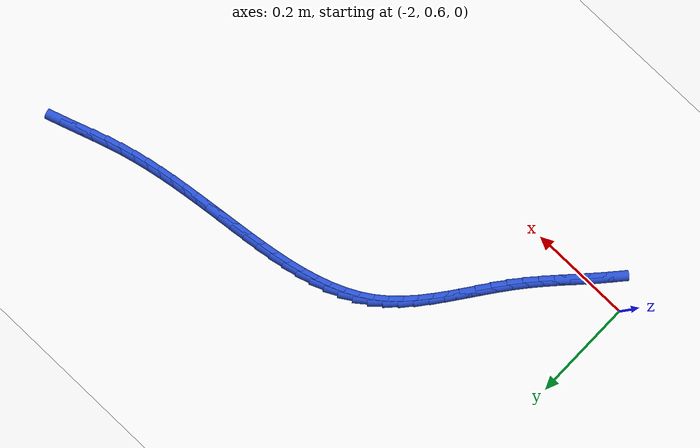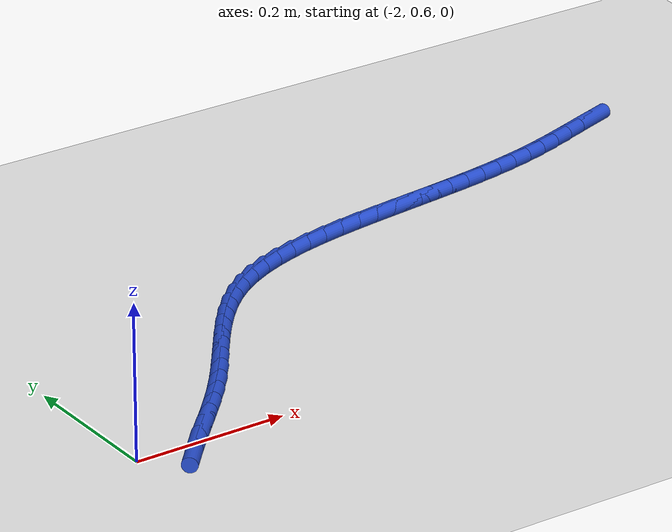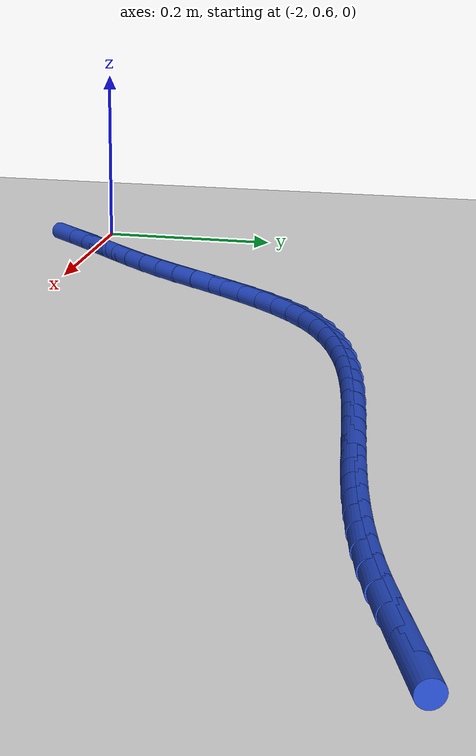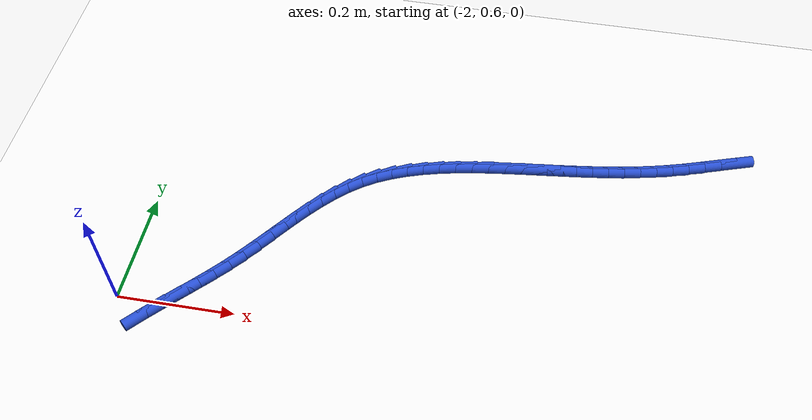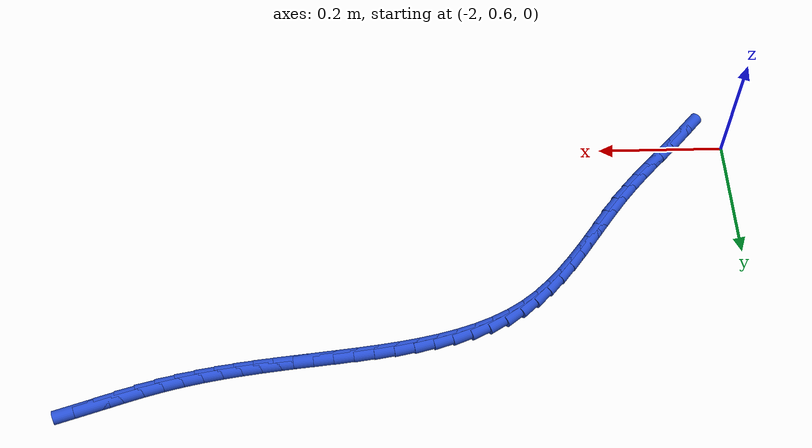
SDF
<sdf version="1.6">
 <world name="default">
  <model name="ground_plane">
   <static>1</static>
   <link name="link">
    <collision name="collision">
     <geometry><plane><normal>0 0 1</normal><size>100 100</size></plane></geometry>
     <surface><friction><ode><mu>100</mu><mu2>50</mu2></ode></friction></surface>
    </collision>
    <visual name="visual">
     <cast_shadows>0</cast_shadows>
     <geometry><plane><normal>0 0 1</normal><size>100 100</size></plane></geometry>
     <material>
      <script><uri>file://media/materials/scripts/gazebo.material</uri><name>Gazebo/WhiteGlow</name></script>
     </material>
    </visual>
   </link>
  </model>
  <model name="line">
   <link name="link_57">
    <pose>-1.0180384416801902 1.0537966444905325 0.01 0 1.57 0.3209126686316605</pose>
    <collision name="collision">
     <geometry><cylinder><radius>0.01</radius><length>0.08</length></cylinder></geometry>
    </collision>
    <visual name="visual">
     <material>
      <script><name>Gazebo/Blue</name><uri>file://media/materials/scripts/gazebo.material</uri></script>
     </material>
     <geometry><cylinder><radius>0.01</radius><length>0.08</length></cylinder></geometry>
    </visual>
   </link>
   <link name="link_58">
    <pose>-1.0463140936176338 1.0443977440187677 0.01 0 1.57 0.3240543120813352</pose>
    <collision name="collision">
     <geometry><cylinder><radius>0.01</radius><length>0.08</length></cylinder></geometry>
    </collision>
    <visual name="visual">
     <material>
      <script><name>Gazebo/Blue</name><uri>file://media/materials/scripts/gazebo.material</uri></script>
     </material>
     <geometry><cylinder><radius>0.01</radius><length>0.08</length></cylinder></geometry>
    </visual>
   </link>
   <link name="link_59">
    <pose>-1.0746094828220407 1.0348934632487918 0.01 0 1.57 0.31195559259773376</pose>
    <collision name="collision">
     <geometry><cylinder><radius>0.01</radius><length>0.08</length></cylinder></geometry>
    </collision>
    <visual name="visual">
     <material>
      <script><name>Gazebo/Blue</name><uri>file://media/materials/scripts/gazebo.material</uri></script>
     </material>
     <geometry><cylinder><radius>0.01</radius><length>0.08</length></cylinder></geometry>
    </visual>
   </link>
   <link name="link_60">
    <pose>-1.1028544534829592 1.025784880642453 0.01 0 1.57 0.2842858949782381</pose>
    <collision name="collision">
     <geometry><cylinder><radius>0.01</radius><length>0.08</length></cylinder></geometry>
    </collision>
    <visual name="visual">
     <material>
      <script><name>Gazebo/Blue</name><uri>file://media/materials/scripts/gazebo.material</uri></script>
     </material>
     <geometry><cylinder><radius>0.01</radius><length>0.08</length></cylinder></geometry>
    </visual>
   </link>
   <link name="link_61">
    <pose>-1.1309800457159738 1.0175665723268508 0.01 0 1.57 0.24844615764061057</pose>
    <collision name="collision">
     <geometry><cylinder><radius>0.01</radius><length>0.08</length></cylinder></geometry>
    </collision>
    <visual name="visual">
     <material>
      <script><name>Gazebo/Blue</name><uri>file://media/materials/scripts/gazebo.material</uri></script>
     </material>
     <geometry><cylinder><radius>0.01</radius><length>0.08</length></cylinder></geometry>
    </visual>
   </link>
   <link name="link_62">
    <pose>-1.1589662777002083 1.0104668172208588 0.01 0 1.57 0.2155462210586795</pose>
    <collision name="collision">
     <geometry><cylinder><radius>0.01</radius><length>0.08</length></cylinder></geometry>
    </collision>
    <visual name="visual">
     <material>
      <script><name>Gazebo/Blue</name><uri>file://media/materials/scripts/gazebo.material</uri></script>
     </material>
     <geometry><cylinder><radius>0.01</radius><length>0.08</length></cylinder></geometry>
    </visual>
   </link>
   <link name="link_63">
    <pose>-1.1868582688744531 1.0043599340732465 0.01 0 1.57 0.1868319856758696</pose>
    <collision name="collision">
     <geometry><cylinder><radius>0.01</radius><length>0.08</length></cylinder></geometry>
    </collision>
    <visual name="visual">
     <material>
      <script><name>Gazebo/Blue</name><uri>file://media/materials/scripts/gazebo.material</uri></script>
     </material>
     <geometry><cylinder><radius>0.01</radius><length>0.08</length></cylinder></geometry>
    </visual>
   </link>
   <link name="link_64">
    <pose>-1.214705641324465 0.9990957604216043 0.01 0 1.57 0.1626871165350177</pose>
    <collision name="collision">
     <geometry><cylinder><radius>0.01</radius><length>0.08</length></cylinder></geometry>
    </collision>
    <visual name="visual">
     <material>
      <script><name>Gazebo/Blue</name><uri>file://media/materials/scripts/gazebo.material</uri></script>
     </material>
     <geometry><cylinder><radius>0.01</radius><length>0.08</length></cylinder></geometry>
    </visual>
   </link>
   <link name="link_65">
    <pose>-1.242558017136001 0.9945241338035207 0.01 0 1.57 0.14339016053336223</pose>
    <collision name="collision">
     <geometry><cylinder><radius>0.01</radius><length>0.08</length></cylinder></geometry>
    </collision>
    <visual name="visual">
     <material>
      <script><name>Gazebo/Blue</name><uri>file://media/materials/scripts/gazebo.material</uri></script>
     </material>
     <geometry><cylinder><radius>0.01</radius><length>0.08</length></cylinder></geometry>
    </visual>
   </link>
   <link name="link_66">
    <pose>-1.270465018394818 0.990494891756585 0.01 0 1.57 0.1291190429775601</pose>
    <collision name="collision">
     <geometry><cylinder><radius>0.01</radius><length>0.08</length></cylinder></geometry>
    </collision>
    <visual name="visual">
     <material>
      <script><name>Gazebo/Blue</name><uri>file://media/materials/scripts/gazebo.material</uri></script>
     </material>
     <geometry><cylinder><radius>0.01</radius><length>0.08</length></cylinder></geometry>
    </visual>
   </link>
   <link name="link_67">
    <pose>-1.2984762671866734 0.9868578718183878 0.01 0 1.57 0.1199590187277706</pose>
    <collision name="collision">
     <geometry><cylinder><radius>0.01</radius><length>0.08</length></cylinder></geometry>
    </collision>
    <visual name="visual">
     <material>
      <script><name>Gazebo/Blue</name><uri>file://media/materials/scripts/gazebo.material</uri></script>
     </material>
     <geometry><cylinder><radius>0.01</radius><length>0.08</length></cylinder></geometry>
    </visual>
   </link>
   <link name="link_68">
    <pose>-1.3266413855973231 0.9834629115265174 0.01 0 1.57 0.11591181261026348</pose>
    <collision name="collision">
     <geometry><cylinder><radius>0.01</radius><length>0.08</length></cylinder></geometry>
    </collision>
    <visual name="visual">
     <material>
      <script><name>Gazebo/Blue</name><uri>file://media/materials/scripts/gazebo.material</uri></script>
     </material>
     <geometry><cylinder><radius>0.01</radius><length>0.08</length></cylinder></geometry>
    </visual>
   </link>
   <link name="link_69">
    <pose>-1.3550099957125252 0.9801598484185645 0.01 0 1.57 0.11690427085240773</pose>
    <collision name="collision">
     <geometry><cylinder><radius>0.01</radius><length>0.08</length></cylinder></geometry>
    </collision>
    <visual name="visual">
     <material>
      <script><name>Gazebo/Blue</name><uri>file://media/materials/scripts/gazebo.material</uri></script>
     </material>
     <geometry><cylinder><radius>0.01</radius><length>0.08</length></cylinder></geometry>
    </visual>
   </link>
   <link name="link_70">
    <pose>-1.3836317196180357 0.9767985200321178 0.01 0 1.57 0.1228278778570988</pose>
    <collision name="collision">
     <geometry><cylinder><radius>0.01</radius><length>0.08</length></cylinder></geometry>
    </collision>
    <visual name="visual">
     <material>
      <script><name>Gazebo/Blue</name><uri>file://media/materials/scripts/gazebo.material</uri></script>
     </material>
     <geometry><cylinder><radius>0.01</radius><length>0.08</length></cylinder></geometry>
    </visual>
   </link>
   <link name="link_71">
    <pose>-1.4125535657635688 0.9732281378815058 0.01 0 1.57 0.13486666835451985</pose>
    <collision name="collision">
     <geometry><cylinder><radius>0.01</radius><length>0.08</length></cylinder></geometry>
    </collision>
    <visual name="visual">
     <material>
      <script><name>Gazebo/Blue</name><uri>file://media/materials/scripts/gazebo.material</uri></script>
     </material>
     <geometry><cylinder><radius>0.01</radius><length>0.08</length></cylinder></geometry>
    </visual>
   </link>
   <link name="link_72">
    <pose>-1.441712488704288 0.969271553155115 0.01 0 1.57 0.15483810672446255</pose>
    <collision name="collision">
     <geometry><cylinder><radius>0.01</radius><length>0.08</length></cylinder></geometry>
    </collision>
    <visual name="visual">
     <material>
      <script><name>Gazebo/Blue</name><uri>file://media/materials/scripts/gazebo.material</uri></script>
     </material>
     <geometry><cylinder><radius>0.01</radius><length>0.08</length></cylinder></geometry>
    </visual>
   </link>
   <link name="link_73">
    <pose>-1.4708973897423008 0.9647161550340773 0.01 0 1.57 0.18314148890919707</pose>
    <collision name="collision">
     <geometry><cylinder><radius>0.01</radius><length>0.08</length></cylinder></geometry>
    </collision>
    <visual name="visual">
     <material>
      <script><name>Gazebo/Blue</name><uri>file://media/materials/scripts/gazebo.material</uri></script>
     </material>
     <geometry><cylinder><radius>0.01</radius><length>0.08</length></cylinder></geometry>
    </visual>
   </link>
   <link name="link_74">
    <pose>-1.4998867464685015 0.9593468359916473 0.01 0 1.57 0.22030091998594417</pose>
    <collision name="collision">
     <geometry><cylinder><radius>0.01</radius><length>0.08</length></cylinder></geometry>
    </collision>
    <visual name="visual">
     <material>
      <script><name>Gazebo/Blue</name><uri>file://media/materials/scripts/gazebo.material</uri></script>
     </material>
     <geometry><cylinder><radius>0.01</radius><length>0.08</length></cylinder></geometry>
    </visual>
   </link>
   <link name="link_75">
    <pose>-1.5284590364737827 0.9529484885010825 0.01 0 1.57 0.2670582784661351</pose>
    <collision name="collision">
     <geometry><cylinder><radius>0.01</radius><length>0.08</length></cylinder></geometry>
    </collision>
    <visual name="visual">
     <material>
      <script><name>Gazebo/Blue</name><uri>file://media/materials/scripts/gazebo.material</uri></script>
     </material>
     <geometry><cylinder><radius>0.01</radius><length>0.08</length></cylinder></geometry>
    </visual>
   </link>
   <link name="link_76">
    <pose>-1.5563927373490378 0.9453060050356383 0.01 0 1.57 0.3243146006801603</pose>
    <collision name="collision">
     <geometry><cylinder><radius>0.01</radius><length>0.08</length></cylinder></geometry>
    </collision>
    <visual name="visual">
     <material>
      <script><name>Gazebo/Blue</name><uri>file://media/materials/scripts/gazebo.material</uri></script>
     </material>
     <geometry><cylinder><radius>0.01</radius><length>0.08</length></cylinder></geometry>
    </visual>
   </link>
   <link name="link_77">
    <pose>-1.5834663266851607 0.9362042780685707 0.01 0 1.57 0.39302275209202026</pose>
    <collision name="collision">
     <geometry><cylinder><radius>0.01</radius><length>0.08</length></cylinder></geometry>
    </collision>
    <visual name="visual">
     <material>
      <script><name>Gazebo/Blue</name><uri>file://media/materials/scripts/gazebo.material</uri></script>
     </material>
     <geometry><cylinder><radius>0.01</radius><length>0.08</length></cylinder></geometry>
    </visual>
   </link>
   <link name="link_78">
    <pose>-1.6094582820730456 0.9254282000731366 0.01 0 1.57 0.4739992963055898</pose>
    <collision name="collision">
     <geometry><cylinder><radius>0.01</radius><length>0.08</length></cylinder></geometry>
    </collision>
    <visual name="visual">
     <material>
      <script><name>Gazebo/Blue</name><uri>file://media/materials/scripts/gazebo.material</uri></script>
     </material>
     <geometry><cylinder><radius>0.01</radius><length>0.08</length></cylinder></geometry>
    </visual>
   </link>
   <link name="link_79">
    <pose>-1.6341470811035848 0.9127626635225913 0.01 0 1.57 0.5676241114362008</pose>
    <collision name="collision">
     <geometry><cylinder><radius>0.01</radius><length>0.08</length></cylinder></geometry>
    </collision>
    <visual name="visual">
     <material>
      <script><name>Gazebo/Blue</name><uri>file://media/materials/scripts/gazebo.material</uri></script>
     </material>
     <geometry><cylinder><radius>0.01</radius><length>0.08</length></cylinder></geometry>
    </visual>
   </link>
   <link name="link_80">
    <pose>-1.6573112931341238 0.8979926606103238 0.01 0 1.57 0.6675223752436715</pose>
    <collision name="collision">
     <geometry><cylinder><radius>0.01</radius><length>0.08</length></cylinder></geometry>
    </collision>
    <visual name="visual">
     <material>
      <script><name>Gazebo/Blue</name><uri>file://media/materials/scripts/gazebo.material</uri></script>
     </material>
     <geometry><cylinder><radius>0.01</radius><length>0.08</length></cylinder></geometry>
    </visual>
   </link>
   <link name="link_81">
    <pose>-1.6788399083577752 0.881023174879361 0.01 0 1.57 0.7547705717098283</pose>
    <collision name="collision">
     <geometry><cylinder><radius>0.01</radius><length>0.08</length></cylinder></geometry>
    </collision>
    <visual name="visual">
     <material>
      <script><name>Gazebo/Blue</name><uri>file://media/materials/scripts/gazebo.material</uri></script>
     </material>
     <geometry><cylinder><radius>0.01</radius><length>0.08</length></cylinder></geometry>
    </visual>
   </link>
   <link name="link_82">
    <pose>-1.698946535724557 0.8621119443369386 0.01 0 1.57 0.8252152059311931</pose>
    <collision name="collision">
     <geometry><cylinder><radius>0.01</radius><length>0.08</length></cylinder></geometry>
    </collision>
    <visual name="visual">
     <material>
      <script><name>Gazebo/Blue</name><uri>file://media/materials/scripts/gazebo.material</uri></script>
     </material>
     <geometry><cylinder><radius>0.01</radius><length>0.08</length></cylinder></geometry>
    </visual>
   </link>
   <link name="link_83">
    <pose>-1.717904136305009 0.8415812033418729 0.01 0 1.57 0.8789981842940865</pose>
    <collision name="collision">
     <geometry><cylinder><radius>0.01</radius><length>0.08</length></cylinder></geometry>
    </collision>
    <visual name="visual">
     <material>
      <script><name>Gazebo/Blue</name><uri>file://media/materials/scripts/gazebo.material</uri></script>
     </material>
     <geometry><cylinder><radius>0.01</radius><length>0.08</length></cylinder></geometry>
    </visual>
   </link>
   <link name="link_84">
    <pose>-1.735985671169673 0.8197531862529825 0.01 0 1.57 0.91682173868104</pose>
    <collision name="collision">
     <geometry><cylinder><radius>0.01</radius><length>0.08</length></cylinder></geometry>
    </collision>
    <visual name="visual">
     <material>
      <script><name>Gazebo/Blue</name><uri>file://media/materials/scripts/gazebo.material</uri></script>
     </material>
     <geometry><cylinder><radius>0.01</radius><length>0.08</length></cylinder></geometry>
    </visual>
   </link>
   <link name="link_85">
    <pose>-1.7534641013890924 0.7969501274290836 0.01 0 1.57 0.9395096066476771</pose>
    <collision name="collision">
     <geometry><cylinder><radius>0.01</radius><length>0.08</length></cylinder></geometry>
    </collision>
    <visual name="visual">
     <material>
      <script><name>Gazebo/Blue</name><uri>file://media/materials/scripts/gazebo.material</uri></script>
     </material>
     <geometry><cylinder><radius>0.01</radius><length>0.08</length></cylinder></geometry>
    </visual>
   </link>
   <link name="link_86">
    <pose>-1.770612388033807 0.7734942612289942 0.01 0 1.57 0.9477466765565931</pose>
    <collision name="collision">
     <geometry><cylinder><radius>0.01</radius><length>0.08</length></cylinder></geometry>
    </collision>
    <visual name="visual">
     <material>
      <script><name>Gazebo/Blue</name><uri>file://media/materials/scripts/gazebo.material</uri></script>
     </material>
     <geometry><cylinder><radius>0.01</radius><length>0.08</length></cylinder></geometry>
    </visual>
   </link>
   <link name="link_87">
    <pose>-1.7877034921743586 0.7497078220115316 0.01 0 1.57 0.9419563450467623</pose>
    <collision name="collision">
     <geometry><cylinder><radius>0.01</radius><length>0.08</length></cylinder></geometry>
    </collision>
    <visual name="visual">
     <material>
      <script><name>Gazebo/Blue</name><uri>file://media/materials/scripts/gazebo.material</uri></script>
     </material>
     <geometry><cylinder><radius>0.01</radius><length>0.08</length></cylinder></geometry>
    </visual>
   </link>
   <link name="link_88">
    <pose>-1.8050103748812898 0.7259130441355124 0.01 0 1.57 0.9222729205326368</pose>
    <collision name="collision">
     <geometry><cylinder><radius>0.01</radius><length>0.08</length></cylinder></geometry>
    </collision>
    <visual name="visual">
     <material>
      <script><name>Gazebo/Blue</name><uri>file://media/materials/scripts/gazebo.material</uri></script>
     </material>
     <geometry><cylinder><radius>0.01</radius><length>0.08</length></cylinder></geometry>
    </visual>
   </link>
   <link name="link_89">
    <pose>-1.8228059972251407 0.7024321619597547 0.01 0 1.57 0.8891310103549633</pose>
    <collision name="collision">
     <geometry><cylinder><radius>0.01</radius><length>0.08</length></cylinder></geometry>
    </collision>
    <visual name="visual">
     <material>
      <script><name>Gazebo/Blue</name><uri>file://media/materials/scripts/gazebo.material</uri></script>
     </material>
     <geometry><cylinder><radius>0.01</radius><length>0.08</length></cylinder></geometry>
    </visual>
   </link>
   <link name="link_90">
    <pose>-1.8413513482412776 0.67957671791348 0.01 0 1.57 0.8546655504393275</pose>
    <collision name="collision">
     <geometry><cylinder><radius>0.01</radius><length>0.08</length></cylinder></geometry>
    </collision>
    <visual name="visual">
     <material>
      <script><name>Gazebo/Blue</name><uri>file://media/materials/scripts/gazebo.material</uri></script>
     </material>
     <geometry><cylinder><radius>0.01</radius><length>0.08</length></cylinder></geometry>
    </visual>
   </link>
   <link name="link_91">
    <pose>-1.8606364130896305 0.6574162275429698 0.01 0 1.57 0.8310324120451116</pose>
    <collision name="collision">
     <geometry><cylinder><radius>0.01</radius><length>0.08</length></cylinder></geometry>
    </collision>
    <visual name="visual">
     <material>
      <script><name>Gazebo/Blue</name><uri>file://media/materials/scripts/gazebo.material</uri></script>
     </material>
     <geometry><cylinder><radius>0.01</radius><length>0.08</length></cylinder></geometry>
    </visual>
   </link>
   <link name="link_92">
    <pose>-1.8803825695163372 0.6357803197324008 0.01 0 1.57 0.8187480232031066</pose>
    <collision name="collision">
     <geometry><cylinder><radius>0.01</radius><length>0.08</length></cylinder></geometry>
    </collision>
    <visual name="visual">
     <material>
      <script><name>Gazebo/Blue</name><uri>file://media/materials/scripts/gazebo.material</uri></script>
     </material>
     <geometry><cylinder><radius>0.01</radius><length>0.08</length></cylinder></geometry>
    </visual>
   </link>
   <link name="link_93">
    <pose>-1.9002997025365393 0.6144883594911081 0.01 0 1.57 0.817899839012565</pose>
    <collision name="collision">
     <geometry><cylinder><radius>0.01</radius><length>0.08</length></cylinder></geometry>
    </collision>
    <visual name="visual">
     <material>
      <script><name>Gazebo/Blue</name><uri>file://media/materials/scripts/gazebo.material</uri></script>
     </material>
     <geometry><cylinder><radius>0.01</radius><length>0.08</length></cylinder></geometry>
    </visual>
   </link>
   <link name="link_94">
    <pose>-1.9200976971653796 0.5933597118284263 0.01 0 1.57 0.8287222479016721</pose>
    <collision name="collision">
     <geometry><cylinder><radius>0.01</radius><length>0.08</length></cylinder></geometry>
    </collision>
    <visual name="visual">
     <material>
      <script><name>Gazebo/Blue</name><uri>file://media/materials/scripts/gazebo.material</uri></script>
     </material>
     <geometry><cylinder><radius>0.01</radius><length>0.08</length></cylinder></geometry>
    </visual>
   </link>
   <link name="link_95">
    <pose>-1.939486438418 0.5722137417536911 0.01 0 1.57 0.8516098982184807</pose>
    <collision name="collision">
     <geometry><cylinder><radius>0.01</radius><length>0.08</length></cylinder></geometry>
    </collision>
    <visual name="visual">
     <material>
      <script><name>Gazebo/Blue</name><uri>file://media/materials/scripts/gazebo.material</uri></script>
     </material>
     <geometry><cylinder><radius>0.01</radius><length>0.08</length></cylinder></geometry>
    </visual>
   </link>
  </model>
 </world>
</sdf>
